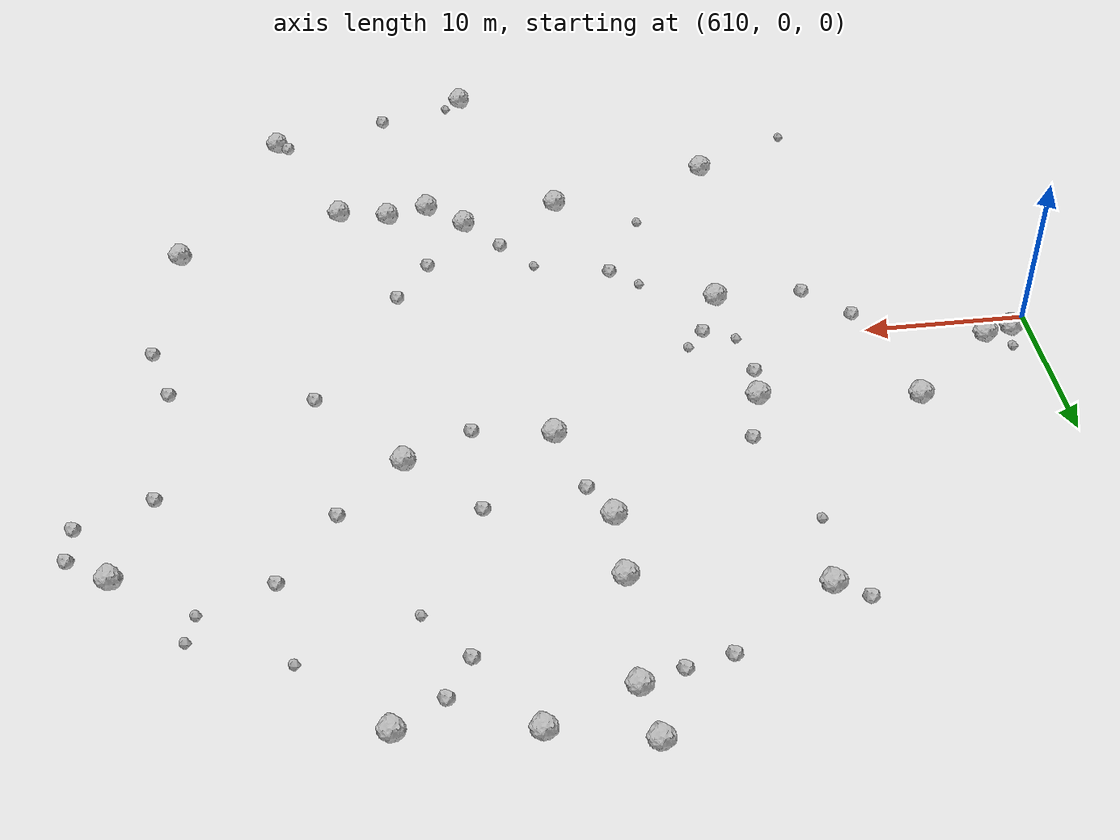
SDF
<sdf version="1.6">
 <world name="default">
  <include><uri>model://sun</uri></include>
  <model name="rock1_16_3">
   <include><uri>model://rock1</uri><pose>626.8158892117532 19.97117553185577 0.5 0 0 0</pose></include>
  </model>
  <model name="rock1_16_4">
   <include><uri>model://rock1</uri><pose>651.9487058656748 -15.794422446276366 0.5 0 0 0</pose></include>
  </model>
  <model name="rock1_16_5">
   <include><uri>model://rock1</uri><pose>656.1570056749948 -24.501178677818228 0.5 0 0 0</pose></include>
  </model>
  <model name="rock1_16_6">
   <include><uri>model://rock1</uri><pose>637.4824388111141 13.734261087243262 0.5 0 0 0</pose></include>
  </model>
  <model name="rock1_16_7">
   <include><uri>model://rock1</uri><pose>643.0994895845695 -28.680005837938957 0.5 0 0 0</pose></include>
  </model>
  <model name="rock1_16_8">
   <include><uri>model://rock1</uri><pose>627.8298149929572 5.299833809423532 0.5 0 0 0</pose></include>
  </model>
  <model name="rock1_16_9">
   <include><uri>model://rock1</uri><pose>646.1334526142952 -15.746135231000915 0.5 0 0 0</pose></include>
  </model>
  <model name="rock1_16_10">
   <include><uri>model://rock1</uri><pose>611.1658098294693 1.1232188579468207 0.5 0 0 0</pose></include>
  </model>
  <model name="rock1_16_11">
   <include><uri>model://rock1</uri><pose>664.2466151897826 15.019409761498274 0.5 0 0 0</pose></include>
  </model>
  <model name="rock1_16_12">
   <include><uri>model://rock1</uri><pose>637.2264029774922 28.493630055341306 0.5 0 0 0</pose></include>
  </model>
  <model name="rock1_16_13">
   <include><uri>model://rock1</uri><pose>627.187308999582 -18.02830920213106 0.5 0 0 0</pose></include>
  </model>
  <model name="rock1_16_14">
   <include><uri>model://rock1</uri><pose>642.706302711972 27.212450842525733 0.5 0 0 0</pose></include>
  </model>
  <model name="rock1_16_15">
   <include><uri>model://rock1</uri><pose>637.4621394730863 18.10537568251646 0.5 0 0 0</pose></include>
  </model>
  <model name="rock1_16_16">
   <include><uri>model://rock1</uri><pose>648.7575434784468 -15.119340836879626 0.5 0 0 0</pose></include>
  </model>
  <model name="rock1_16_17">
   <include><uri>model://rock1</uri><pose>649.9581295785991 26.40570398956607 0.5 0 0 0</pose></include>
  </model>
  <model name="rock1_16_18">
   <include><uri>model://rock1</uri><pose>662.1787847949898 -12.364844250771796 0.5 0 0 0</pose></include>
  </model>
  <model name="rock1_16_19">
   <include><uri>model://rock1</uri><pose>643.7797671303379 -13.637564420948003 0.5 0 0 0</pose></include>
  </model>
  <model name="rock1_16_20">
   <include><uri>model://rock1</uri><pose>612.9617523054552 1.5301427135683952 0.5 0 0 0</pose></include>
  </model>
  <model name="rock1_16_21">
   <include><uri>model://rock1</uri><pose>648.640685739932 8.164188752807213 0.5 0 0 0</pose></include>
  </model>
  <model name="rock1_16_22">
   <include><uri>model://rock1</uri><pose>640.0042676937218 7.000715508920578 0.5 0 0 0</pose></include>
  </model>
  <model name="rock1_16_23">
   <include><uri>model://rock1</uri><pose>618.3488673417556 6.411707207781973 0.5 0 0 0</pose></include>
  </model>
  <model name="rock1_16_24">
   <include><uri>model://rock1</uri><pose>637.5812999488242 -15.177084342568023 0.5 0 0 0</pose></include>
  </model>
  <model name="rock1_16_25">
   <include><uri>model://rock1</uri><pose>637.774070157623 25.188915969132985 0.5 0 0 0</pose></include>
  </model>
  <model name="rock1_16_26">
   <include><uri>model://rock1</uri><pose>628.6670377652222 -3.9969891452330018 0.5 0 0 0</pose></include>
  </model>
  <model name="rock2_16_0">
   <include><uri>model://rock2</uri><pose>655.5731823943314 16.33534106987947 0.3 0 0 0</pose></include>
  </model>
  <model name="rock2_16_1">
   <include><uri>model://rock2</uri><pose>623.1654988871059 -3.947467253592116 0.3 0 0 0</pose></include>
  </model>
  <model name="rock2_16_2">
   <include><uri>model://rock2</uri><pose>648.7110314484355 -26.525614034453586 0.3 0 0 0</pose></include>
  </model>
  <model name="rock2_16_3">
   <include><uri>model://rock2</uri><pose>646.3660266331001 -9.511855428078512 0.3 0 0 0</pose></include>
  </model>
  <model name="rock2_16_4">
   <include><uri>model://rock2</uri><pose>662.0705887850579 0.8955038315247883 0.3 0 0 0</pose></include>
  </model>
  <model name="rock2_16_5">
   <include><uri>model://rock2</uri><pose>655.405628923223 -23.976760496359212 0.3 0 0 0</pose></include>
  </model>
  <model name="rock2_16_6">
   <include><uri>model://rock2</uri><pose>644.498683161238 12.351645739582892 0.3 0 0 0</pose></include>
  </model>
  <model name="rock2_16_7">
   <include><uri>model://rock2</uri><pose>648.4313092272059 -6.4517851027317406 0.3 0 0 0</pose></include>
  </model>
  <model name="rock2_16_8">
   <include><uri>model://rock2</uri><pose>632.7817819685247 23.835056589350053 0.3 0 0 0</pose></include>
  </model>
  <model name="rock2_16_9">
   <include><uri>model://rock2</uri><pose>635.3633836154329 24.414712972940897 0.3 0 0 0</pose></include>
  </model>
  <model name="rock2_16_10">
   <include><uri>model://rock2</uri><pose>653.5686799922852 2.4269380555624167 0.3 0 0 0</pose></include>
  </model>
  <model name="rock2_16_11">
   <include><uri>model://rock2</uri><pose>666.6134430229549 13.424927658665048 0.3 0 0 0</pose></include>
  </model>
  <model name="rock2_16_12">
   <include><uri>model://rock2</uri><pose>627.5797109429674 3.0615010054563143 0.3 0 0 0</pose></include>
  </model>
  <model name="rock2_16_13">
   <include><uri>model://rock2</uri><pose>663.2547905518754 -2.8855112816392356 0.3 0 0 0</pose></include>
  </model>
  <model name="rock2_16_14">
   <include><uri>model://rock2</uri><pose>625.0608612464101 21.032902087948806 0.3 0 0 0</pose></include>
  </model>
  <model name="rock2_16_15">
   <include><uri>model://rock2</uri><pose>620.5713117266571 -1.3803139897322758 0.3 0 0 0</pose></include>
  </model>
  <model name="rock2_16_16">
   <include><uri>model://rock2</uri><pose>652.3744572326018 11.839916017214982 0.3 0 0 0</pose></include>
  </model>
  <model name="rock2_16_17">
   <include><uri>model://rock2</uri><pose>666.4881666420375 11.134248406608606 0.3 0 0 0</pose></include>
  </model>
  <model name="rock2_16_18">
   <include><uri>model://rock2</uri><pose>644.6792304446388 6.155815873524411 0.3 0 0 0</pose></include>
  </model>
  <model name="rock2_16_19">
   <include><uri>model://rock2</uri><pose>628.7893096679607 8.661252735835724 0.3 0 0 0</pose></include>
  </model>
  <model name="rock2_16_20">
   <include><uri>model://rock2</uri><pose>647.2310350873838 24.766409333068346 0.3 0 0 0</pose></include>
  </model>
  <model name="rock2_16_21">
   <include><uri>model://rock2</uri><pose>662.2911603345816 9.428862534322711 0.3 0 0 0</pose></include>
  </model>
  <model name="rock2_16_22">
   <include><uri>model://rock2</uri><pose>641.5890302917514 -11.032364543119783 0.3 0 0 0</pose></include>
  </model>
  <model name="rock2_16_23">
   <include><uri>model://rock2</uri><pose>638.6904063545404 11.440602060330733 0.3 0 0 0</pose></include>
  </model>
  <model name="rock2_16_24">
   <include><uri>model://rock2</uri><pose>630.0040551215387 -0.8913332553119133 0.3 0 0 0</pose></include>
  </model>
  <model name="rock2_16_25">
   <include><uri>model://rock2</uri><pose>634.8708441382488 -7.463799194385182 0.3 0 0 0</pose></include>
  </model>
  <model name="rock2_16_26">
   <include><uri>model://rock2</uri><pose>645.8135981237925 22.408866822833787 0.3 0 0 0</pose></include>
  </model>
  <model name="rock3_16_0">
   <include><uri>model://rock3</uri><pose>648.1813747236616 19.32213357414409 0.2 0 0 0</pose></include>
  </model>
  <model name="rock3_16_1">
   <include><uri>model://rock3</uri><pose>659.6131582426524 17.907638592455207 0.2 0 0 0</pose></include>
  </model>
  <model name="rock3_16_2">
   <include><uri>model://rock3</uri><pose>620.8979149907037 -21.289046590995216 0.2 0 0 0</pose></include>
  </model>
  <model name="rock3_16_3">
   <include><uri>model://rock3</uri><pose>626.2562930734969 15.23025446001568 0.2 0 0 0</pose></include>
  </model>
  <model name="rock3_16_4">
   <include><uri>model://rock3</uri><pose>611.488211946426 2.6617097108975116 0.2 0 0 0</pose></include>
  </model>
  <model name="rock3_16_5">
   <include><uri>model://rock3</uri><pose>628.0505451311049 -0.060247507418200286 0.2 0 0 0</pose></include>
  </model>
  <model name="rock3_16_6">
   <include><uri>model://rock3</uri><pose>633.1425129467967 -6.046982418882571 0.2 0 0 0</pose></include>
  </model>
  <model name="rock3_16_7">
   <include><uri>model://rock3</uri><pose>644.1140127471367 -27.85181987394278 0.2 0 0 0</pose></include>
  </model>
  <model name="rock3_16_8">
   <include><uri>model://rock3</uri><pose>639.5685905471254 -8.740669169219412 0.2 0 0 0</pose></include>
  </model>
  <model name="rock3_16_9">
   <include><uri>model://rock3</uri><pose>660.0564961500459 19.631372030074914 0.2 0 0 0</pose></include>
  </model>
  <model name="rock3_16_10">
   <include><uri>model://rock3</uri><pose>654.5869667247537 21.695066393465318 0.2 0 0 0</pose></include>
  </model>
  <model name="rock3_16_11">
   <include><uri>model://rock3</uri><pose>643.0504754282683 26.85341246984965 0.2 0 0 0</pose></include>
  </model>
  <model name="rock3_16_12">
   <include><uri>model://rock3</uri><pose>632.3346118556999 -12.554425837431193 0.2 0 0 0</pose></include>
  </model>
  <model name="rock3_16_13">
   <include><uri>model://rock3</uri><pose>631.0597097556331 0.38281264882558474 0.2 0 0 0</pose></include>
  </model>
 </world>
</sdf>
